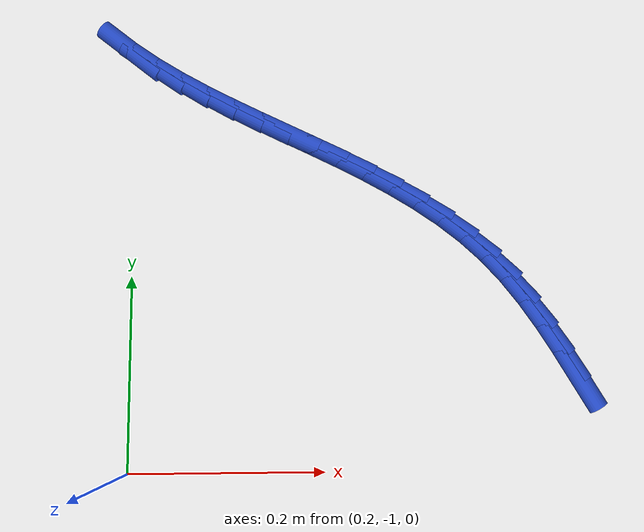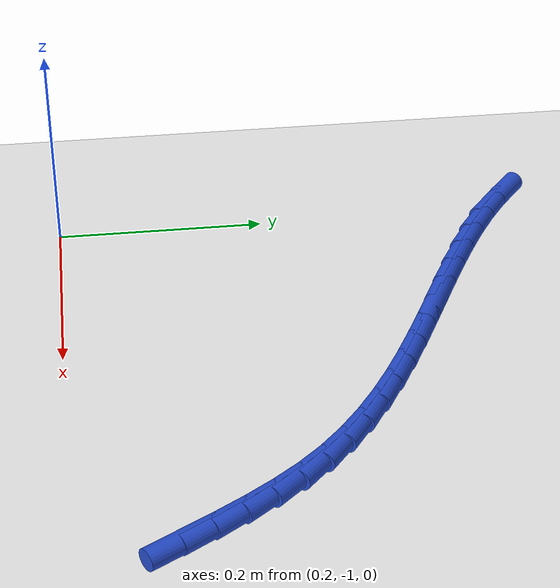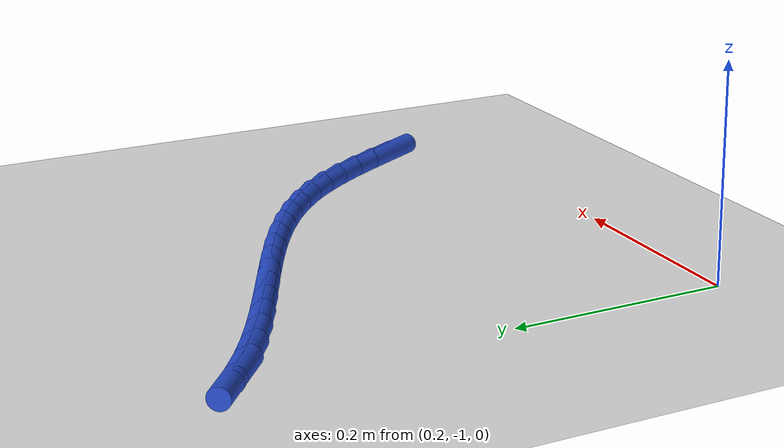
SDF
<sdf version="1.6">
 <world name="default">
  <model name="ground_plane">
   <static>1</static>
   <link name="link">
    <collision name="collision">
     <geometry><plane><normal>0 0 1</normal><size>100 100</size></plane></geometry>
     <surface><friction><ode><mu>100</mu><mu2>50</mu2></ode></friction></surface>
    </collision>
    <visual name="visual">
     <cast_shadows>0</cast_shadows>
     <geometry><plane><normal>0 0 1</normal><size>100 100</size></plane></geometry>
     <material>
      <script><uri>file://media/materials/scripts/gazebo.material</uri><name>Gazebo/WhiteGlow</name></script>
     </material>
    </visual>
   </link>
  </model>
  <model name="line">
   <link name="link_201">
    <pose>0.6560225298911827 -0.9042974854133665 0.01 0 1.57 -1.0412233589975757</pose>
    <collision name="collision">
     <geometry><cylinder><radius>0.01</radius><length>0.08</length></cylinder></geometry>
    </collision>
    <visual name="visual">
     <material>
      <script><name>Gazebo/Blue</name><uri>file://media/materials/scripts/gazebo.material</uri></script>
     </material>
     <geometry><cylinder><radius>0.01</radius><length>0.08</length></cylinder></geometry>
    </visual>
   </link>
   <link name="link_202">
    <pose>0.6404174609236094 -0.8776378089642822 0.01 0 1.57 -1.0133916055514687</pose>
    <collision name="collision">
     <geometry><cylinder><radius>0.01</radius><length>0.08</length></cylinder></geometry>
    </collision>
    <visual name="visual">
     <material>
      <script><name>Gazebo/Blue</name><uri>file://media/materials/scripts/gazebo.material</uri></script>
     </material>
     <geometry><cylinder><radius>0.01</radius><length>0.08</length></cylinder></geometry>
    </visual>
   </link>
   <link name="link_203">
    <pose>0.6242409152450027 -0.851686409217251 0.01 0 1.57 -0.9701906101394479</pose>
    <collision name="collision">
     <geometry><cylinder><radius>0.01</radius><length>0.08</length></cylinder></geometry>
    </collision>
    <visual name="visual">
     <material>
      <script><name>Gazebo/Blue</name><uri>file://media/materials/scripts/gazebo.material</uri></script>
     </material>
     <geometry><cylinder><radius>0.01</radius><length>0.08</length></cylinder></geometry>
    </visual>
   </link>
   <link name="link_204">
    <pose>0.6071448660867066 -0.8267296348858516 0.01 0 1.57 -0.9110949316761715</pose>
    <collision name="collision">
     <geometry><cylinder><radius>0.01</radius><length>0.08</length></cylinder></geometry>
    </collision>
    <visual name="visual">
     <material>
      <script><name>Gazebo/Blue</name><uri>file://media/materials/scripts/gazebo.material</uri></script>
     </material>
     <geometry><cylinder><radius>0.01</radius><length>0.08</length></cylinder></geometry>
    </visual>
   </link>
   <link name="link_205">
    <pose>0.5887812866800649 -0.803053834683663 0.01 0 1.57 -0.835948325978251</pose>
    <collision name="collision">
     <geometry><cylinder><radius>0.01</radius><length>0.08</length></cylinder></geometry>
    </collision>
    <visual name="visual">
     <material>
      <script><name>Gazebo/Blue</name><uri>file://media/materials/scripts/gazebo.material</uri></script>
     </material>
     <geometry><cylinder><radius>0.01</radius><length>0.08</length></cylinder></geometry>
    </visual>
   </link>
   <link name="link_206">
    <pose>0.5688021549558615 -0.7809453532395583 0.01 0 1.57 -0.7502635126978884</pose>
    <collision name="collision">
     <geometry><cylinder><radius>0.01</radius><length>0.08</length></cylinder></geometry>
    </collision>
    <visual name="visual">
     <material>
      <script><name>Gazebo/Blue</name><uri>file://media/materials/scripts/gazebo.material</uri></script>
     </material>
     <geometry><cylinder><radius>0.01</radius><length>0.08</length></cylinder></geometry>
    </visual>
   </link>
   <link name="link_207">
    <pose>0.5469692221454079 -0.7605951213403842 0.01 0 1.57 -0.672627500922101</pose>
    <collision name="collision">
     <geometry><cylinder><radius>0.01</radius><length>0.08</length></cylinder></geometry>
    </collision>
    <visual name="visual">
     <material>
      <script><name>Gazebo/Blue</name><uri>file://media/materials/scripts/gazebo.material</uri></script>
     </material>
     <geometry><cylinder><radius>0.01</radius><length>0.08</length></cylinder></geometry>
    </visual>
   </link>
   <link name="link_208">
    <pose>0.5234381505579084 -0.7418516862500536 0.01 0 1.57 -0.6073658628419913</pose>
    <collision name="collision">
     <geometry><cylinder><radius>0.01</radius><length>0.08</length></cylinder></geometry>
    </collision>
    <visual name="visual">
     <material>
      <script><name>Gazebo/Blue</name><uri>file://media/materials/scripts/gazebo.material</uri></script>
     </material>
     <geometry><cylinder><radius>0.01</radius><length>0.08</length></cylinder></geometry>
    </visual>
   </link>
   <link name="link_209">
    <pose>0.4984529257028957 -0.7244868256004965 0.01 0 1.57 -0.554260940498985</pose>
    <collision name="collision">
     <geometry><cylinder><radius>0.01</radius><length>0.08</length></cylinder></geometry>
    </collision>
    <visual name="visual">
     <material>
      <script><name>Gazebo/Blue</name><uri>file://media/materials/scripts/gazebo.material</uri></script>
     </material>
     <geometry><cylinder><radius>0.01</radius><length>0.08</length></cylinder></geometry>
    </visual>
   </link>
   <link name="link_210">
    <pose>0.4722575330899006 -0.7082723170236412 0.01 0 1.57 -0.5127807250663649</pose>
    <collision name="collision">
     <geometry><cylinder><radius>0.01</radius><length>0.08</length></cylinder></geometry>
    </collision>
    <visual name="visual">
     <material>
      <script><name>Gazebo/Blue</name><uri>file://media/materials/scripts/gazebo.material</uri></script>
     </material>
     <geometry><cylinder><radius>0.01</radius><length>0.08</length></cylinder></geometry>
    </visual>
   </link>
   <link name="link_211">
    <pose>0.4450959582284549 -0.692979938151417 0.01 0 1.57 -0.4823074558222811</pose>
    <collision name="collision">
     <geometry><cylinder><radius>0.01</radius><length>0.08</length></cylinder></geometry>
    </collision>
    <visual name="visual">
     <material>
      <script><name>Gazebo/Blue</name><uri>file://media/materials/scripts/gazebo.material</uri></script>
     </material>
     <geometry><cylinder><radius>0.01</radius><length>0.08</length></cylinder></geometry>
    </visual>
   </link>
   <link name="link_212">
    <pose>0.41721218662808973 -0.6783814666157525 0.01 0 1.57 -0.462286981638169</pose>
    <collision name="collision">
     <geometry><cylinder><radius>0.01</radius><length>0.08</length></cylinder></geometry>
    </collision>
    <visual name="visual">
     <material>
      <script><name>Gazebo/Blue</name><uri>file://media/materials/scripts/gazebo.material</uri></script>
     </material>
     <geometry><cylinder><radius>0.01</radius><length>0.08</length></cylinder></geometry>
    </visual>
   </link>
   <link name="link_213">
    <pose>0.388850203798337 -0.6642486800485771 0.01 0 1.57 -0.452316173716145</pose>
    <collision name="collision">
     <geometry><cylinder><radius>0.01</radius><length>0.08</length></cylinder></geometry>
    </collision>
    <visual name="visual">
     <material>
      <script><name>Gazebo/Blue</name><uri>file://media/materials/scripts/gazebo.material</uri></script>
     </material>
     <geometry><cylinder><radius>0.01</radius><length>0.08</length></cylinder></geometry>
    </visual>
   </link>
   <link name="link_214">
    <pose>0.36025399524872803 -0.6503533560818197 0.01 0 1.57 -0.45218887940216235</pose>
    <collision name="collision">
     <geometry><cylinder><radius>0.01</radius><length>0.08</length></cylinder></geometry>
    </collision>
    <visual name="visual">
     <material>
      <script><name>Gazebo/Blue</name><uri>file://media/materials/scripts/gazebo.material</uri></script>
     </material>
     <geometry><cylinder><radius>0.01</radius><length>0.08</length></cylinder></geometry>
    </visual>
   </link>
   <link name="link_215">
    <pose>0.3316675464887934 -0.6364672723474083 0.01 0 1.57 -0.46191564942694535</pose>
    <collision name="collision">
     <geometry><cylinder><radius>0.01</radius><length>0.08</length></cylinder></geometry>
    </collision>
    <visual name="visual">
     <material>
      <script><name>Gazebo/Blue</name><uri>file://media/materials/scripts/gazebo.material</uri></script>
     </material>
     <geometry><cylinder><radius>0.01</radius><length>0.08</length></cylinder></geometry>
    </visual>
   </link>
   <link name="link_216">
    <pose>0.3033348430280664 -0.6223622064772732 0.01 0 1.57 -0.4817249337717591</pose>
    <collision name="collision">
     <geometry><cylinder><radius>0.01</radius><length>0.08</length></cylinder></geometry>
    </collision>
    <visual name="visual">
     <material>
      <script><name>Gazebo/Blue</name><uri>file://media/materials/scripts/gazebo.material</uri></script>
     </material>
     <geometry><cylinder><radius>0.01</radius><length>0.08</length></cylinder></geometry>
    </visual>
   </link>
   <link name="link_217">
    <pose>0.2754998703760777 -0.607809936103343 0.01 0 1.57 -0.5120456621725898</pose>
    <collision name="collision">
     <geometry><cylinder><radius>0.01</radius><length>0.08</length></cylinder></geometry>
    </collision>
    <visual name="visual">
     <material>
      <script><name>Gazebo/Blue</name><uri>file://media/materials/scripts/gazebo.material</uri></script>
     </material>
     <geometry><cylinder><radius>0.01</radius><length>0.08</length></cylinder></geometry>
    </visual>
   </link>
   <link name="link_218">
    <pose>0.2484066140423587 -0.5925822388575462 0.01 0 1.57 -0.5534632207344103</pose>
    <collision name="collision">
     <geometry><cylinder><radius>0.01</radius><length>0.08</length></cylinder></geometry>
    </collision>
    <visual name="visual">
     <material>
      <script><name>Gazebo/Blue</name><uri>file://media/materials/scripts/gazebo.material</uri></script>
     </material>
     <geometry><cylinder><radius>0.01</radius><length>0.08</length></cylinder></geometry>
    </visual>
   </link>
   <link name="link_219">
    <pose>0.22229905953644102 -0.5764508923718125 0.01 0 1.57 -0.6066329069538892</pose>
    <collision name="collision">
     <geometry><cylinder><radius>0.01</radius><length>0.08</length></cylinder></geometry>
    </collision>
    <visual name="visual">
     <material>
      <script><name>Gazebo/Blue</name><uri>file://media/materials/scripts/gazebo.material</uri></script>
     </material>
     <geometry><cylinder><radius>0.01</radius><length>0.08</length></cylinder></geometry>
    </visual>
   </link>
   <link name="link_220">
    <pose>0.19742119236785619 -0.5591876742780704 0.01 0 1.57 -0.6721290432190264</pose>
    <collision name="collision">
     <geometry><cylinder><radius>0.01</radius><length>0.08</length></cylinder></geometry>
    </collision>
    <visual name="visual">
     <material>
      <script><name>Gazebo/Blue</name><uri>file://media/materials/scripts/gazebo.material</uri></script>
     </material>
     <geometry><cylinder><radius>0.01</radius><length>0.08</length></cylinder></geometry>
    </visual>
   </link>
  </model>
 </world>
</sdf>
